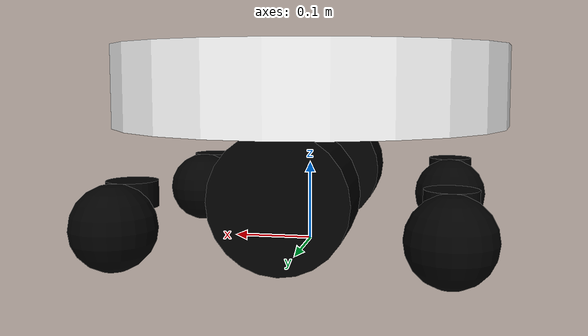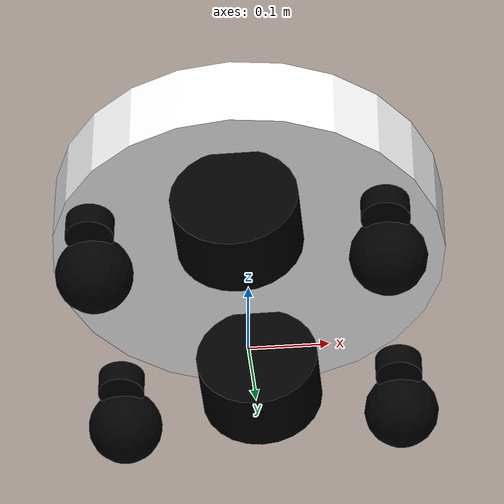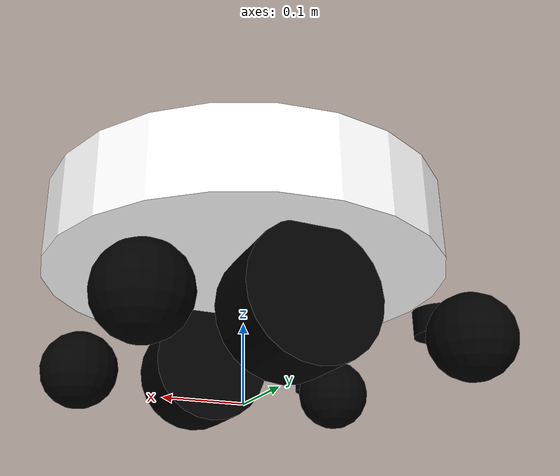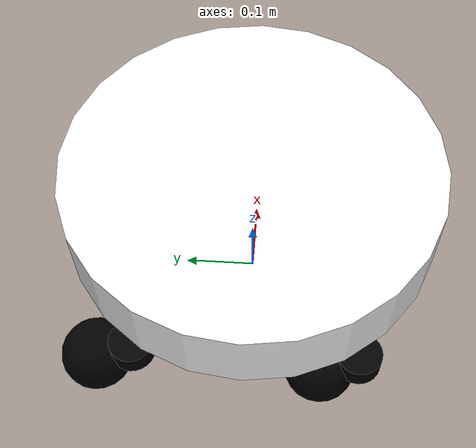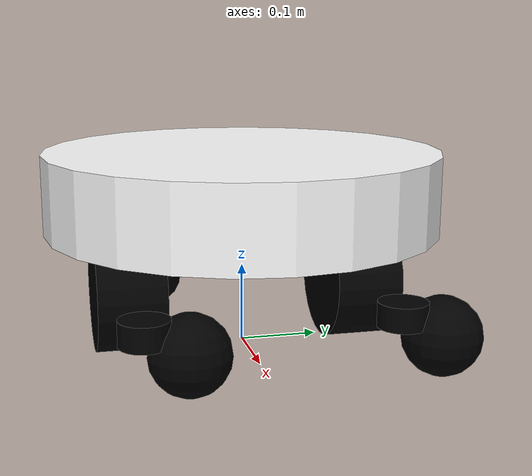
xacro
<?xml version="1.0"?>
<robot name="diff_base" xmlns:xacro="http://ros.org/wiki/xacro">
	<!-- General Macro -->
	<xacro:include filename="$(find config_robot)/urdf/lib/common.urdf.xacro" />
	<!-- Wheel Macro -->
	<xacro:include filename="$(find config_robot)/urdf/lib/wheel/wheel.urdf.xacro" />
	<xacro:include filename="$(find config_robot)/urdf/lib/wheel/caster_wheel.urdf.xacro" />
	<!-- IMU Macro -->
	<xacro:include filename="$(find config_robot)/urdf/lib/sensor/block_imu.urdf.xacro" />
	<!-- Lidar Macro -->
	<xacro:include filename="$(find config_robot)/urdf/lib/sensor/block_lidar.urdf.xacro" />

	<!-- PROPERTY LIST -->
	<!--All units in m-kg-s-radians unit system -->
	<xacro:property name="M_PI_2" value="${pi/2.0}" />

	<!-- AGV Base -->
	<xacro:property name="agv_base_height" value="0.4" />
	<xacro:property name="agv_base_lift" value="0.0" />
	<xacro:property name="agv_base_radius" value="0.25" />
	<xacro:property name="agv_base_length" value="0.1" />
	<xacro:property name="agv_base_mass" value="40" />
	<xacro:property name="agv_wheel_height" value="0.07825" />

	<!-- BASE-FOOTPRINT -->
	<!-- base_footprint is a fictitious link(frame) that is on the ground right below base_link origin -->
	<link name="base_footprint"/>

	<!-- AGV_BASE_LINK -->
	<joint name="agv_base_joint" type="fixed">
		<origin xyz="0 0 ${agv_base_height/2+agv_base_lift}" rpy="0 0 0" />
		<parent link="base_footprint"/>
		<child link="agv_base_link" />
	</joint>

	<link name="agv_base_link">
		<!-- body -->
		<xacro:inertia_cylinder mass="${agv_base_mass}" radius="${agv_base_radius}" length="${agv_base_length}" />
		<xacro:collision_cylinder radius="${agv_base_radius}" length="${agv_base_length}" />
		<xacro:visual_cylinder radius="${agv_base_radius}" length="${agv_base_length}" material="White" />
	</link>

	<!-- IMU -->
	<xacro:block_imu name="center_imu" parent="agv_base_link" xyz="0.0 0.0 0.0" rpy="0.0 0.0 0.0" />

	<!-- Lidar -->
	<xacro:block_imu name="lidar_link" parent="agv_base_link" xyz="0.0 0.0 0.025" rpy="0.0 0.0 0.0" />

	<!-- WHEELS -->
	<xacro:caster_wheel	name="caster_front_left" parent="agv_base_link"
													xyz="0.18 0.15 ${-agv_base_height/2-agv_base_lift + agv_wheel_height}" rpy="0 ${pi} 0" />
	<xacro:caster_wheel	name="caster_front_right" parent="agv_base_link"
													xyz="0.18 -0.15 ${-agv_base_height/2-agv_base_lift + agv_wheel_height}" rpy="0 ${pi} 0" />
	<xacro:wheel	name="wheel_left" parent="agv_base_link"
													xyz="0.0 0.15 ${-agv_base_height/2-agv_base_lift + agv_wheel_height}" rpy="${-M_PI_2} 0 0" />
	<xacro:wheel	name="wheel_right" parent="agv_base_link"
													xyz="0.0 -0.15 ${-agv_base_height/2-agv_base_lift + agv_wheel_height}" rpy="${-M_PI_2} 0 0" />
	<xacro:caster_wheel	name="caster_back_left" parent="agv_base_link"
													xyz="-0.18 0.15 ${-agv_base_height/2-agv_base_lift + agv_wheel_height}" rpy="0 ${pi} 0" />
	<xacro:caster_wheel	name="caster_back_right" parent="agv_base_link"
													xyz="-0.18 -0.15 ${-agv_base_height/2-agv_base_lift + agv_wheel_height}" rpy="0 ${pi} 0" />

</robot>

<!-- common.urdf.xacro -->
<robot xmlns:xacro="http://www.ros.org/wiki/xacro">
	<material name="Black">
		<color rgba="0.0 0.0 0.0 1.0"/>
	</material>

	<material name="Red">
		<color rgba="0.8 0.0 0.0 1.0"/>
	</material>

	<material name="White">
		<color rgba="1.0 1.0 1.0 1.0"/>
	</material>

	<material name="Blue">
		<color rgba="0.0 0.0 0.8 1.0"/>
	</material>

  <!-- Macro for calculating inertia of cylinder -->
	<xacro:macro name="inertia_cylinder" params="mass radius length xyz:='0 0 0' rpy:='0 0 0'">
		<inertial>
			<origin xyz="${xyz}" rpy="${rpy}"/>
			<mass value="${mass}"/>
			<inertia	ixx="${mass*(3*radius*radius+length*length)/12}" ixy = "0" ixz = "0"
								iyy="${mass*(3*radius*radius+length*length)/12}" iyz = "0"
								izz="${mass*radius*radius/2}" />
		</inertial>
	</xacro:macro>

  <!-- Macro for calculating inertia of sphere -->
	<xacro:macro name="inertia_sphere" params="radius rho:=1000 xyz:='0 0 0' rpy:='0 0 0'">
		<xacro:property name="mass" value="${4/3*rho*pi*radius**3}"/>
		<inertial>
			<origin xyz="${xyz}" rpy="${rpy}"/>
			<mass value="${mass}"/>
			<inertia	ixx="${(2/5*mass)*(radius**2)}" ixy="0" ixz="0"
								iyy="${(2/5*mass)*(radius**2)}"  iyz="0"
								izz="${(2/5*mass)*(radius**2)}" />
		</inertial>
	</xacro:macro>

	<!-- Macro for calculating inertia of cube -->
	<xacro:macro name="inertia_cuboid" params="mass w d h xyz:='0 0 0' rpy:='0 0 0'">
	<inertial>
		<origin xyz="${xyz}" rpy="${rpy}"/>
		<mass value="${mass}"/>
		<inertia	ixx="${mass*(h*h+d*d)/12}" ixy = "0" ixz = "0"
							iyy="${mass*(w*w+d*d)/12}" iyz = "0"
							izz="${mass*(w*w+h*h)/12}" />
		</inertial>
	</xacro:macro>

	<xacro:macro name="collision_cylinder" params="radius length xyz:='0 0 0' rpy:='0 0 0'">
		<collision>
			<origin xyz="${xyz}" rpy="${rpy}"/>
			<geometry>
				<cylinder radius="${radius}" length="${length}" />
			</geometry>
		</collision>
	</xacro:macro>

	<xacro:macro name="collision_sphere" params="radius xyz:='0 0 0' rpy:='0 0 0'">
		<collision>
			<origin xyz="${xyz}" rpy="${rpy}"/>
			<geometry>
				<sphere radius="${radius}"/>
			</geometry>
		</collision>
	</xacro:macro>

	<xacro:macro name="collision_cuboid" params="length width height xyz:='0 0 0' rpy:='0 0 0'">
		<collision>
			<origin xyz="0 0 0" rpy="0 0 0" />
			<geometry>
				<box size="${length} ${width} ${height}" />
			</geometry>
		</collision>
	</xacro:macro>

	<xacro:macro name="visual_sphere" params="radius xyz:='0 0 0' rpy:='0 0 0' material:='Black'">
		<visual>
			<origin xyz="${xyz}" rpy="${rpy}"/>
			<geometry>
				<sphere radius="${radius}"/>
			</geometry>
			<material name="${material}" />
		</visual>
	</xacro:macro>

	<xacro:macro name="visual_cylinder" params="radius length xyz:='0 0 0' rpy:='0 0 0' material:='Black'">
		<visual>
			<origin xyz="${xyz}" rpy="${rpy}"/>
			<geometry>
				<cylinder radius="${radius}" length="${length}" />
			</geometry>
			<material name="${material}" />
		</visual>
	</xacro:macro>

	<xacro:macro name="visual_cuboid" params="length width height xyz:='0 0 0' rpy:='0 0 0' material:='Black'">
		<visual>
			<origin xyz="0 0 0" rpy="0 0 0" />
			<geometry>
				<box size="${length} ${width} ${height}" />
			</geometry>
			<material name="${material}" />
		</visual>
	</xacro:macro>
</robot>

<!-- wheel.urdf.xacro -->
<robot xmlns:xacro="http://www.ros.org/wiki/xacro">
	<xacro:macro name="wheel" params="name parent xyz:='0 0 0' rpy:='0 0 0'">
		<xacro:property name="radius" value="0.07825"/>
		<xacro:property name="length" value="0.085"/>
		<xacro:property name="rho" value="1046.3516"/>
		<xacro:property name="mass" value="2.1"/>

		<joint name="${name}_joint" type="continuous">
			<axis xyz="0 0 1" />
			<origin xyz="${xyz}" rpy="${rpy}" />
			<parent link="${parent}" />
			<child link="${name}" />
			<dynamics damping="1.0" friction="0.0" />
		</joint>

		<link name="${name}">
			<!-- Make the wheel has one point contact to the ground -->
			<xacro:inertia_sphere rho="${rho}" radius="${radius}" />
			<xacro:collision_sphere radius="${radius}" />
			<!-- Show as a cylinder -->
			<xacro:visual_cylinder radius="${radius}" length="${length}" />
		</link>
	</xacro:macro>
</robot>

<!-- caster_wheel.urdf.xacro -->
<robot xmlns:xacro="http://www.ros.org/wiki/xacro">
	<xacro:macro name="caster_wheel" params="name parent xyz:='0 0 0' rpy:='0 0 0'">
		<xacro:property name="radius" value="0.07825"/>
		<xacro:property name="rho" value="1046.3516"/>

		<joint name="${name}_joint" type="continuous">
			<axis xyz="0 0 1" />
			<origin xyz="${xyz}" rpy="${rpy}" />
			<parent link="${parent}" />
			<child link="${name}_planner" />
			<dynamics damping="0.01" friction="0.2" />
		</joint>

		<link name="${name}_planner">
			<xacro:inertia_cylinder mass="0.2" radius="0.03" length="0.01" />
			<xacro:collision_cylinder radius="0.03" length="0.03" />
			<xacro:visual_cylinder radius="0.03" length="0.03" />
		</link>
		<joint name="${name}_planner_joint" type="continuous">
			<axis xyz="1 0 0" />
			<origin xyz="0 0.05 0.03" rpy="0 0 0" />
			<parent link="${name}_planner" />
			<child link="${name}" />
			<dynamics damping="0.01" friction="0.0" />
		</joint>

		<link name="${name}">
			<xacro:inertia_sphere rho="${rho}" radius="${radius-0.03}" />
			<xacro:collision_sphere radius="${radius-0.03}" />
			<xacro:visual_sphere radius="${radius-0.03}" />
		</link>

	</xacro:macro>
</robot>

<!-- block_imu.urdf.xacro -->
<robot xmlns:xacro="http://www.ros.org/wiki/xacro">
	<!-- lidar -->
	<xacro:property name="imu_size" value="0.001" />

	<xacro:macro name="imu_gazebo" params="name hz:=100.0">
		<gazebo reference="${name}">
			<gravity>true</gravity>
			<sensor type="imu" name="${name}">
				<always_on>true</always_on>
				<update_rate>${hz}</update_rate>
				<visualize>true</visualize>
				<topic>__default_topic__</topic>
				<plugin filename="libgazebo_ros_imu_sensor.so" name="imu_plugin">
					<topicName>${name}</topicName>
					<bodyName>${name}</bodyName>
					<updateRateHZ>${hz}</updateRateHZ>
					<gaussianNoise>0.0</gaussianNoise>
					<xyzOffset>0 0 0</xyzOffset>
					<rpyOffset>0 0 0</rpyOffset>
					<frameName>${name}</frameName>
					<initialOrientationAsReference>false</initialOrientationAsReference>
				</plugin>
				<pose>0 0 0 0 0 0</pose>
			</sensor>
		</gazebo>
	</xacro:macro>

	<xacro:macro name="block_imu" params="name parent xyz:='0 0 0' rpy:='0 0 0'">
		<joint name="${name}_joint" type="fixed">
			<origin xyz="${xyz}" rpy="${rpy}" />
			<parent link="${parent}" />
			<child link="${name}" />
		</joint>

		<link name="${name}">
			<xacro:inertia_cuboid mass="0.01" d="${imu_size}" w="${imu_size}" h="${imu_size}" />
			<xacro:collision_cuboid length="${imu_size}" width="${imu_size}" height="${imu_size}" />
			<xacro:visual_cuboid length="${imu_size}" width="${imu_size}" height="${imu_size}"  material="Blue" />
		</link>
	</xacro:macro>
</robot>
